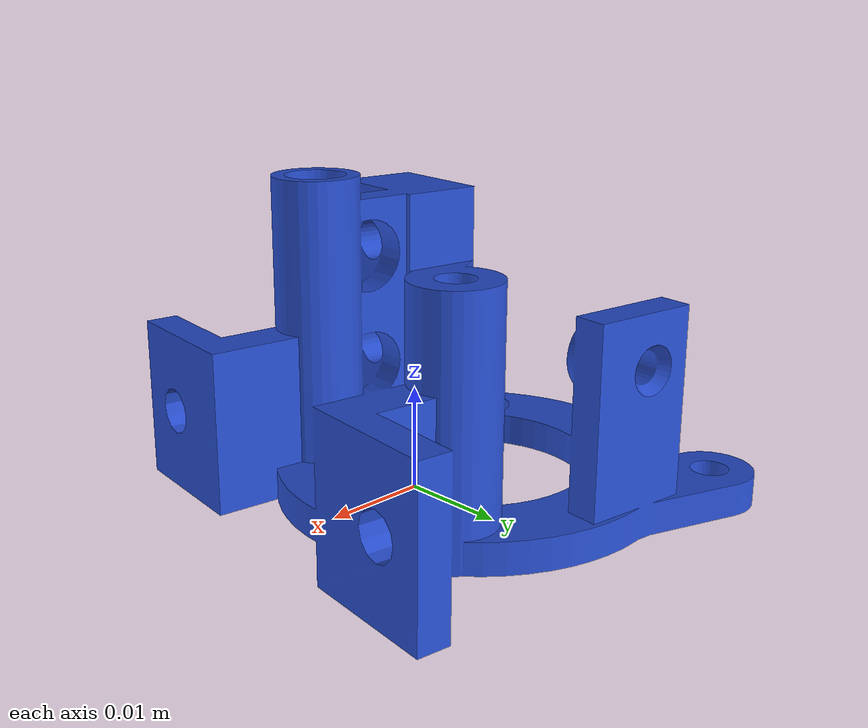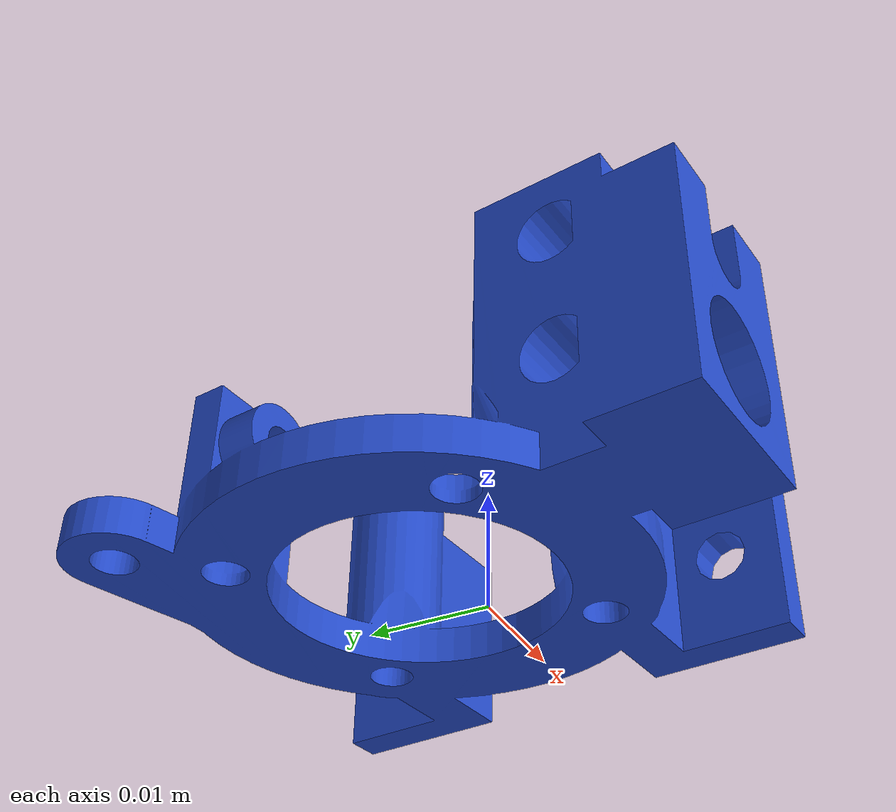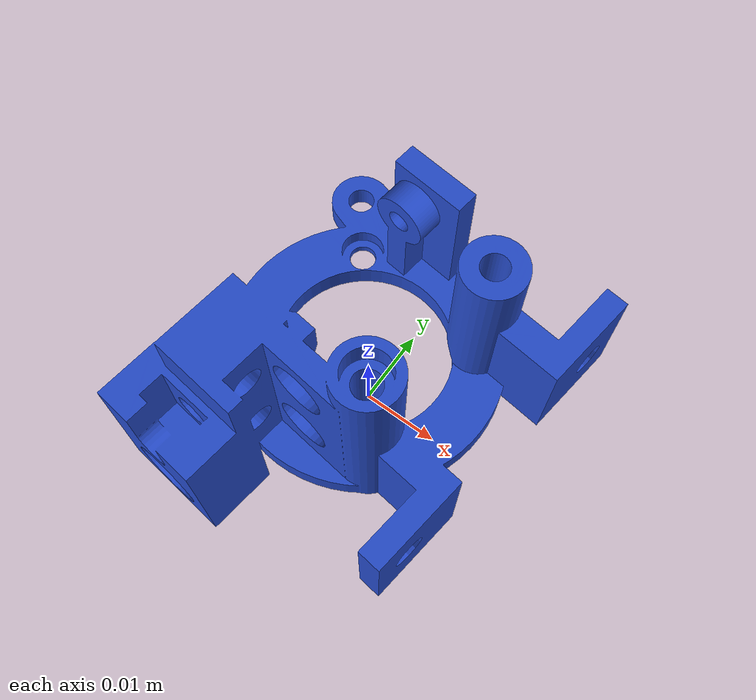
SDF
<?xml version="1.0" ?>
<sdf version="1.5">
  <model name="gear_box">
    <static>false</static>
    <link name="gear_box_link">
      <self_collide>true</self_collide>

      <collision name="collision">
        <geometry>
          <mesh>
            <uri>model://mahler_obj/gear_box/meshes/gear_box.dae</uri>
            <scale>0.6 0.6 0.6</scale>
          </mesh>
        </geometry>
      </collision>

      <visual name="visual">
        <geometry>
          <mesh>
            <uri>model://mahler_obj/gear_box/meshes/gear_box.dae</uri>
            <scale>0.6 0.6 0.6</scale>
          </mesh>
        </geometry>
        <material>
          <script>
            <uri>file://media/materials/scripts/gazebo.material</uri>
            <name>Gazebo/Blue</name>
          </script>
        </material>
      </visual>
    </link>

  </model>
</sdf>
